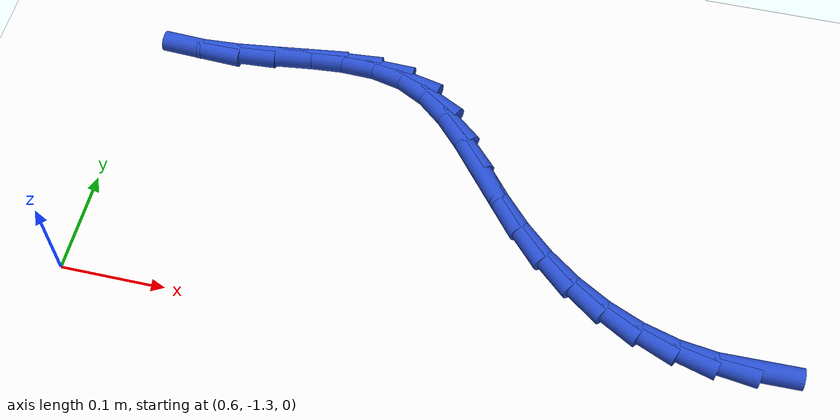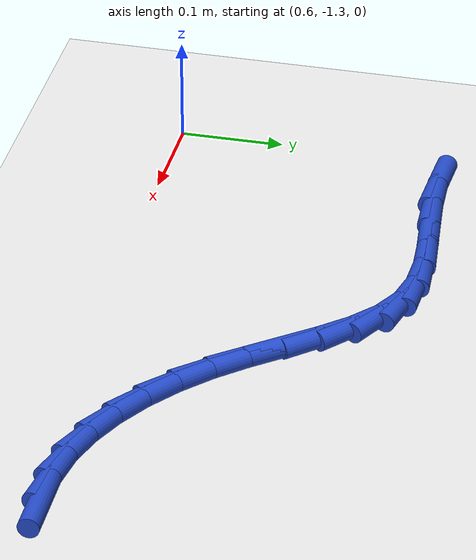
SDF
<sdf version="1.6">
 <world name="default">
  <model name="ground_plane">
   <static>1</static>
   <link name="link">
    <collision name="collision">
     <geometry><plane><normal>0 0 1</normal><size>100 100</size></plane></geometry>
     <surface><friction><ode><mu>100</mu><mu2>50</mu2></ode></friction></surface>
    </collision>
    <visual name="visual">
     <cast_shadows>0</cast_shadows>
     <geometry><plane><normal>0 0 1</normal><size>100 100</size></plane></geometry>
     <material>
      <script><uri>file://media/materials/scripts/gazebo.material</uri><name>Gazebo/WhiteGlow</name></script>
     </material>
    </visual>
   </link>
  </model>
  <model name="line">
   <link name="link_174">
    <pose>1.2362981523321535 -1.2695076833756707 0.01 0 1.57 0.01428656774175888</pose>
    <collision name="collision">
     <geometry><cylinder><radius>0.01</radius><length>0.08</length></cylinder></geometry>
    </collision>
    <visual name="visual">
     <material>
      <script><name>Gazebo/Blue</name><uri>file://media/materials/scripts/gazebo.material</uri></script>
     </material>
     <geometry><cylinder><radius>0.01</radius><length>0.08</length></cylinder></geometry>
    </visual>
   </link>
   <link name="link_175">
    <pose>1.1997344992821435 -1.270030088024317 0.01 0 1.57 -0.13896774529500613</pose>
    <collision name="collision">
     <geometry><cylinder><radius>0.01</radius><length>0.08</length></cylinder></geometry>
    </collision>
    <visual name="visual">
     <material>
      <script><name>Gazebo/Blue</name><uri>file://media/materials/scripts/gazebo.material</uri></script>
     </material>
     <geometry><cylinder><radius>0.01</radius><length>0.08</length></cylinder></geometry>
    </visual>
   </link>
   <link name="link_176">
    <pose>1.1639637272666141 -1.2650268554140973 0.01 0 1.57 -0.28160139344828816</pose>
    <collision name="collision">
     <geometry><cylinder><radius>0.01</radius><length>0.08</length></cylinder></geometry>
    </collision>
    <visual name="visual">
     <material>
      <script><name>Gazebo/Blue</name><uri>file://media/materials/scripts/gazebo.material</uri></script>
     </material>
     <geometry><cylinder><radius>0.01</radius><length>0.08</length></cylinder></geometry>
    </visual>
   </link>
   <link name="link_177">
    <pose>1.129269524573814 -1.2549902064787706 0.01 0 1.57 -0.4122654808163922</pose>
    <collision name="collision">
     <geometry><cylinder><radius>0.01</radius><length>0.08</length></cylinder></geometry>
    </collision>
    <visual name="visual">
     <material>
      <script><name>Gazebo/Blue</name><uri>file://media/materials/scripts/gazebo.material</uri></script>
     </material>
     <geometry><cylinder><radius>0.01</radius><length>0.08</length></cylinder></geometry>
    </visual>
   </link>
   <link name="link_178">
    <pose>1.0959355794919923 -1.2404123621520948 0.01 0 1.57 -0.5313874147085471</pose>
    <collision name="collision">
     <geometry><cylinder><radius>0.01</radius><length>0.08</length></cylinder></geometry>
    </collision>
    <visual name="visual">
     <material>
      <script><name>Gazebo/Blue</name><uri>file://media/materials/scripts/gazebo.material</uri></script>
     </material>
     <geometry><cylinder><radius>0.01</radius><length>0.08</length></cylinder></geometry>
    </visual>
   </link>
   <link name="link_179">
    <pose>1.0642455803093989 -1.2217855433678289 0.01 0 1.57 -0.6405226411674657</pose>
    <collision name="collision">
     <geometry><cylinder><radius>0.01</radius><length>0.08</length></cylinder></geometry>
    </collision>
    <visual name="visual">
     <material>
      <script><name>Gazebo/Blue</name><uri>file://media/materials/scripts/gazebo.material</uri></script>
     </material>
     <geometry><cylinder><radius>0.01</radius><length>0.08</length></cylinder></geometry>
    </visual>
   </link>
   <link name="link_180">
    <pose>1.0344832153142842 -1.1996019710597314 0.01 0 1.57 -0.7418088442555006</pose>
    <collision name="collision">
     <geometry><cylinder><radius>0.01</radius><length>0.08</length></cylinder></geometry>
    </collision>
    <visual name="visual">
     <material>
      <script><name>Gazebo/Blue</name><uri>file://media/materials/scripts/gazebo.material</uri></script>
     </material>
     <geometry><cylinder><radius>0.01</radius><length>0.08</length></cylinder></geometry>
    </visual>
   </link>
   <link name="link_181">
    <pose>1.0069321727948977 -1.174353866161562 0.01 0 1.57 -0.8346910442985427</pose>
    <collision name="collision">
     <geometry><cylinder><radius>0.01</radius><length>0.08</length></cylinder></geometry>
    </collision>
    <visual name="visual">
     <material>
      <script><name>Gazebo/Blue</name><uri>file://media/materials/scripts/gazebo.material</uri></script>
     </material>
     <geometry><cylinder><radius>0.01</radius><length>0.08</length></cylinder></geometry>
    </visual>
   </link>
   <link name="link_182">
    <pose>0.9817984248939947 -1.1466115938299575 0.01 0 1.57 -0.8906959177805468</pose>
    <collision name="collision">
     <geometry><cylinder><radius>0.01</radius><length>0.08</length></cylinder></geometry>
    </collision>
    <visual name="visual">
     <material>
      <script><name>Gazebo/Blue</name><uri>file://media/materials/scripts/gazebo.material</uri></script>
     </material>
     <geometry><cylinder><radius>0.01</radius><length>0.08</length></cylinder></geometry>
    </visual>
   </link>
   <link name="link_183">
    <pose>0.9584693981276812 -1.117768573575042 0.01 0 1.57 -0.8921242397817333</pose>
    <collision name="collision">
     <geometry><cylinder><radius>0.01</radius><length>0.08</length></cylinder></geometry>
    </collision>
    <visual name="visual">
     <material>
      <script><name>Gazebo/Blue</name><uri>file://media/materials/scripts/gazebo.material</uri></script>
     </material>
     <geometry><cylinder><radius>0.01</radius><length>0.08</length></cylinder></geometry>
    </visual>
   </link>
   <link name="link_184">
    <pose>0.935842131331726 -1.089711313748974 0.01 0 1.57 -0.8337605795009536</pose>
    <collision name="collision">
     <geometry><cylinder><radius>0.01</radius><length>0.08</length></cylinder></geometry>
    </collision>
    <visual name="visual">
     <material>
      <script><name>Gazebo/Blue</name><uri>file://media/materials/scripts/gazebo.material</uri></script>
     </material>
     <geometry><cylinder><radius>0.01</radius><length>0.08</length></cylinder></geometry>
    </visual>
   </link>
   <link name="link_185">
    <pose>0.9128070287052072 -1.0643329938856243 0.01 0 1.57 -0.7029917677698119</pose>
    <collision name="collision">
     <geometry><cylinder><radius>0.01</radius><length>0.08</length></cylinder></geometry>
    </collision>
    <visual name="visual">
     <material>
      <script><name>Gazebo/Blue</name><uri>file://media/materials/scripts/gazebo.material</uri></script>
     </material>
     <geometry><cylinder><radius>0.01</radius><length>0.08</length></cylinder></geometry>
    </visual>
   </link>
   <link name="link_186">
    <pose>0.8882544944472006 -1.0435267935188621 0.01 0 1.57 -0.4855560758162602</pose>
    <collision name="collision">
     <geometry><cylinder><radius>0.01</radius><length>0.08</length></cylinder></geometry>
    </collision>
    <visual name="visual">
     <material>
      <script><name>Gazebo/Blue</name><uri>file://media/materials/scripts/gazebo.material</uri></script>
     </material>
     <geometry><cylinder><radius>0.01</radius><length>0.08</length></cylinder></geometry>
    </visual>
   </link>
   <link name="link_187">
    <pose>0.8610755492927056 -1.0291846442455728 0.01 0 1.57 -0.22302026808986053</pose>
    <collision name="collision">
     <geometry><cylinder><radius>0.01</radius><length>0.08</length></cylinder></geometry>
    </collision>
    <visual name="visual">
     <material>
      <script><name>Gazebo/Blue</name><uri>file://media/materials/scripts/gazebo.material</uri></script>
     </material>
     <geometry><cylinder><radius>0.01</radius><length>0.08</length></cylinder></geometry>
    </visual>
   </link>
   <link name="link_188">
    <pose>0.8306165796949015 -1.0222767670208537 0.01 0 1.57 -0.03186886491778706</pose>
    <collision name="collision">
     <geometry><cylinder><radius>0.01</radius><length>0.08</length></cylinder></geometry>
    </collision>
    <visual name="visual">
     <material>
      <script><name>Gazebo/Blue</name><uri>file://media/materials/scripts/gazebo.material</uri></script>
     </material>
     <geometry><cylinder><radius>0.01</radius><length>0.08</length></cylinder></geometry>
    </visual>
   </link>
   <link name="link_189">
    <pose>0.797485184393855 -1.021220549461759 0.01 0 1.57 0.07915211471873712</pose>
    <collision name="collision">
     <geometry><cylinder><radius>0.01</radius><length>0.08</length></cylinder></geometry>
    </collision>
    <visual name="visual">
     <material>
      <script><name>Gazebo/Blue</name><uri>file://media/materials/scripts/gazebo.material</uri></script>
     </material>
     <geometry><cylinder><radius>0.01</radius><length>0.08</length></cylinder></geometry>
    </visual>
   </link>
   <link name="link_190">
    <pose>0.7625055105515425 -1.023995061198347 0.01 0 1.57 0.1266470146756516</pose>
    <collision name="collision">
     <geometry><cylinder><radius>0.01</radius><length>0.08</length></cylinder></geometry>
    </collision>
    <visual name="visual">
     <material>
      <script><name>Gazebo/Blue</name><uri>file://media/materials/scripts/gazebo.material</uri></script>
     </material>
     <geometry><cylinder><radius>0.01</radius><length>0.08</length></cylinder></geometry>
    </visual>
   </link>
   <link name="link_191">
    <pose>0.726501705329942 -1.0285793718606762 0.01 0 1.57 0.12021100054135965</pose>
    <collision name="collision">
     <geometry><cylinder><radius>0.01</radius><length>0.08</length></cylinder></geometry>
    </collision>
    <visual name="visual">
     <material>
      <script><name>Gazebo/Blue</name><uri>file://media/materials/scripts/gazebo.material</uri></script>
     </material>
     <geometry><cylinder><radius>0.01</radius><length>0.08</length></cylinder></geometry>
    </visual>
   </link>
   <link name="link_192">
    <pose>0.6902979158910296 -1.0329525510788051 0.01 0 1.57 0.060135077566849236</pose>
    <collision name="collision">
     <geometry><cylinder><radius>0.01</radius><length>0.08</length></cylinder></geometry>
    </collision>
    <visual name="visual">
     <material>
      <script><name>Gazebo/Blue</name><uri>file://media/materials/scripts/gazebo.material</uri></script>
     </material>
     <geometry><cylinder><radius>0.01</radius><length>0.08</length></cylinder></geometry>
    </visual>
   </link>
   <link name="link_193">
    <pose>0.6547178753143882 -1.0350947424185695 0.01 0 1.57 -0.045252217913867514</pose>
    <collision name="collision">
     <geometry><cylinder><radius>0.01</radius><length>0.08</length></cylinder></geometry>
    </collision>
    <visual name="visual">
     <material>
      <script><name>Gazebo/Blue</name><uri>file://media/materials/scripts/gazebo.material</uri></script>
     </material>
     <geometry><cylinder><radius>0.01</radius><length>0.08</length></cylinder></geometry>
    </visual>
   </link>
  </model>
 </world>
</sdf>
